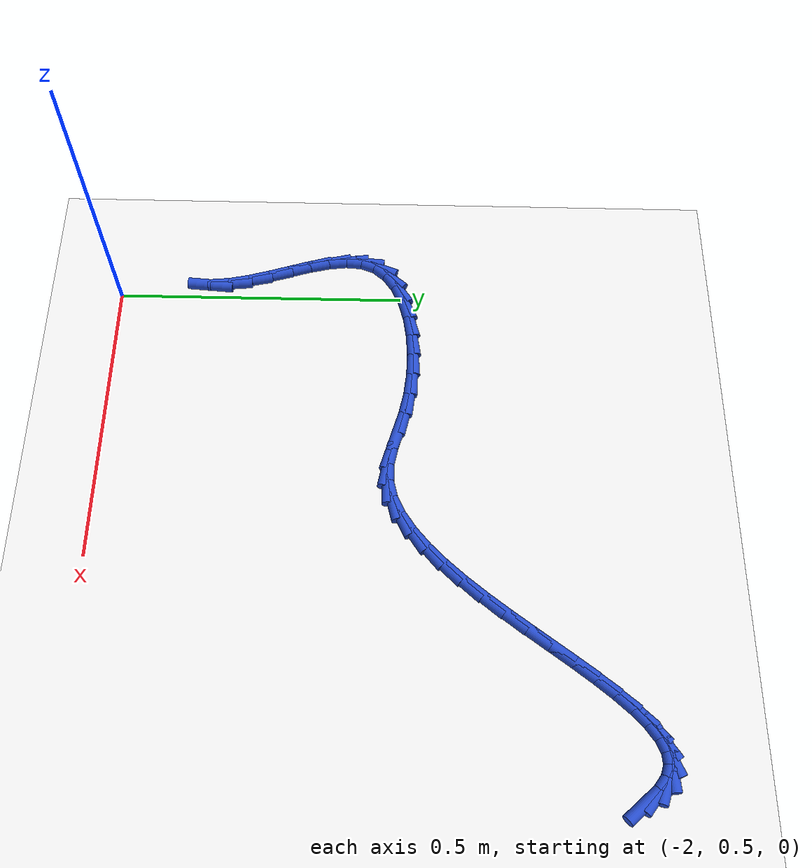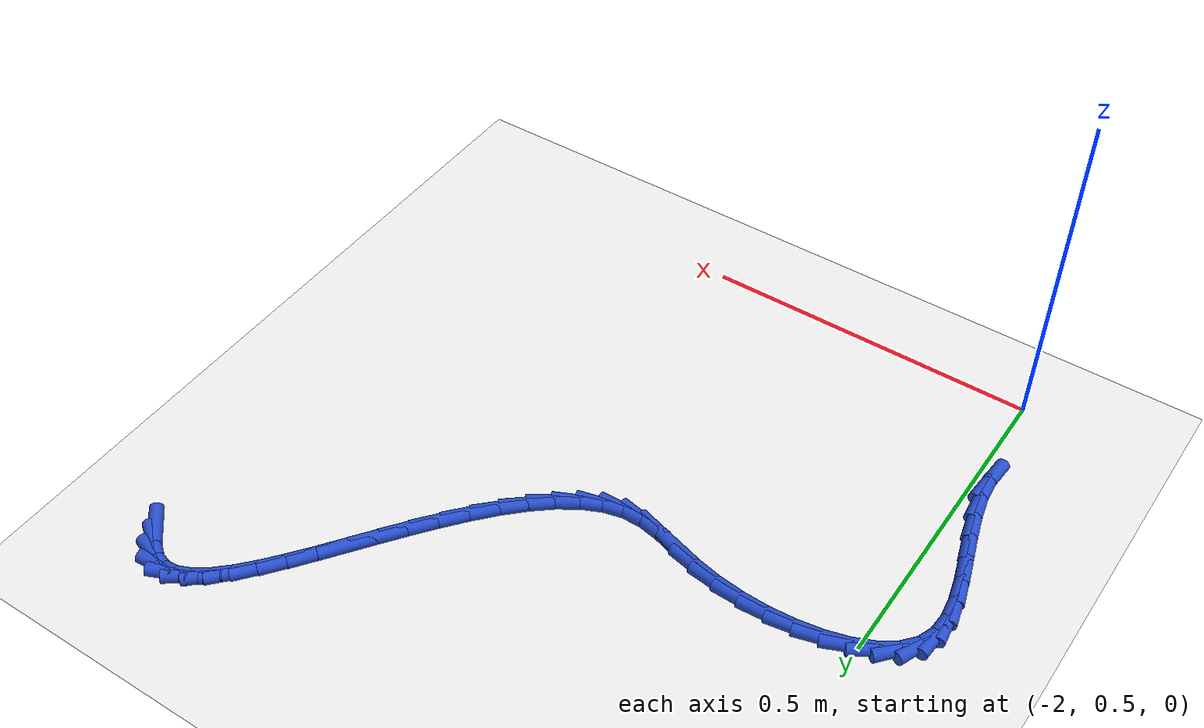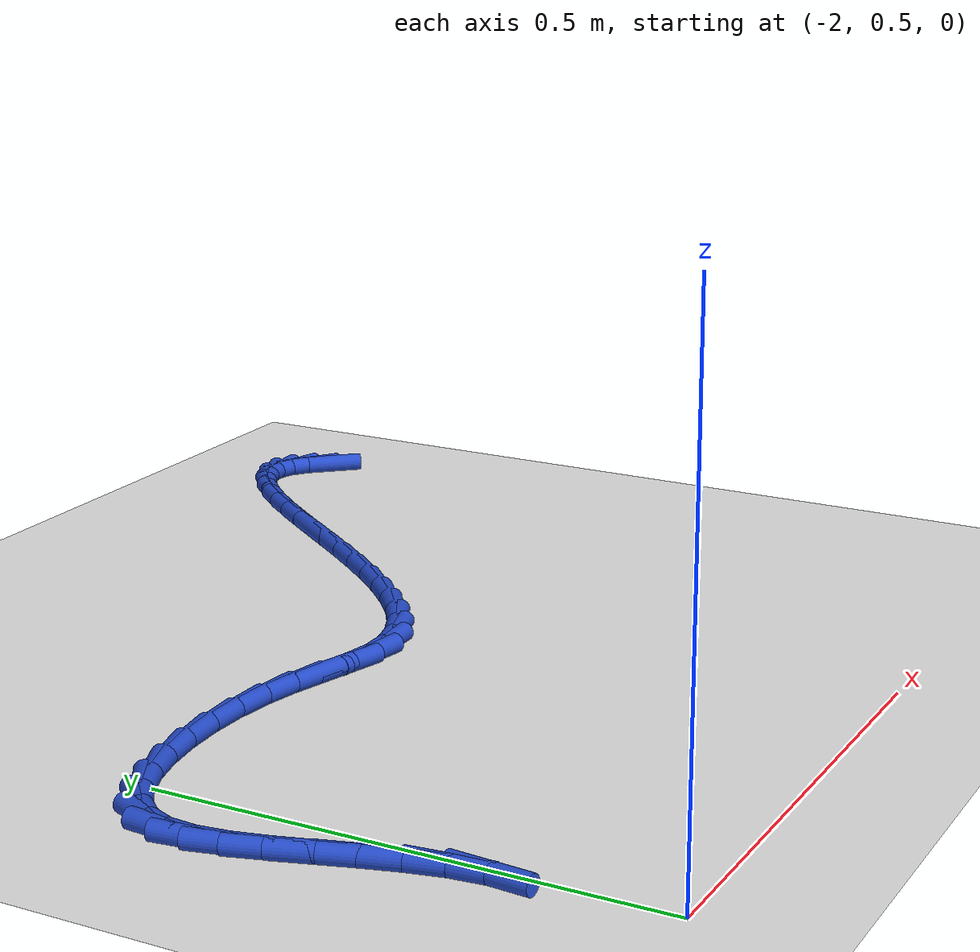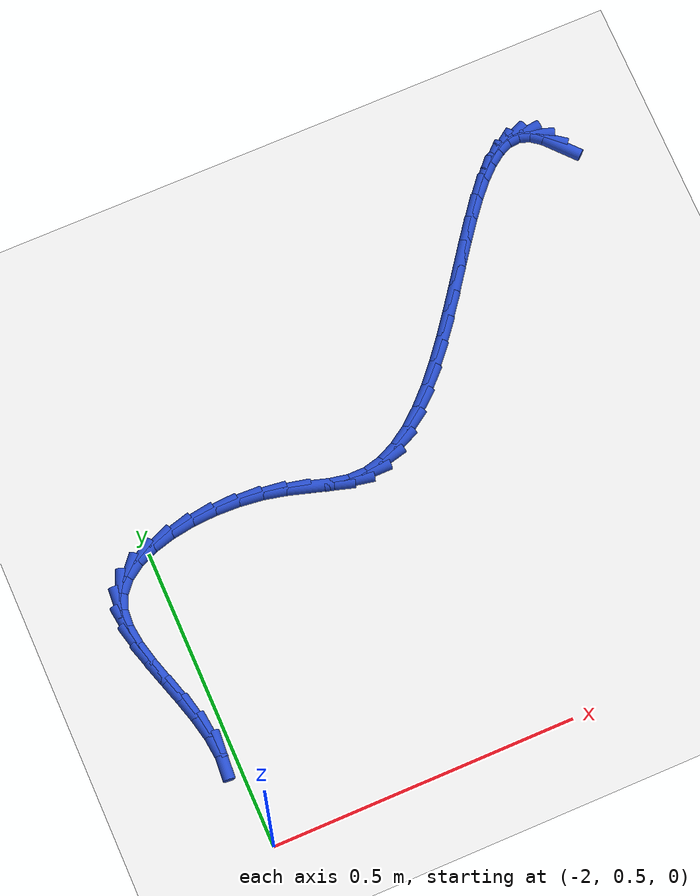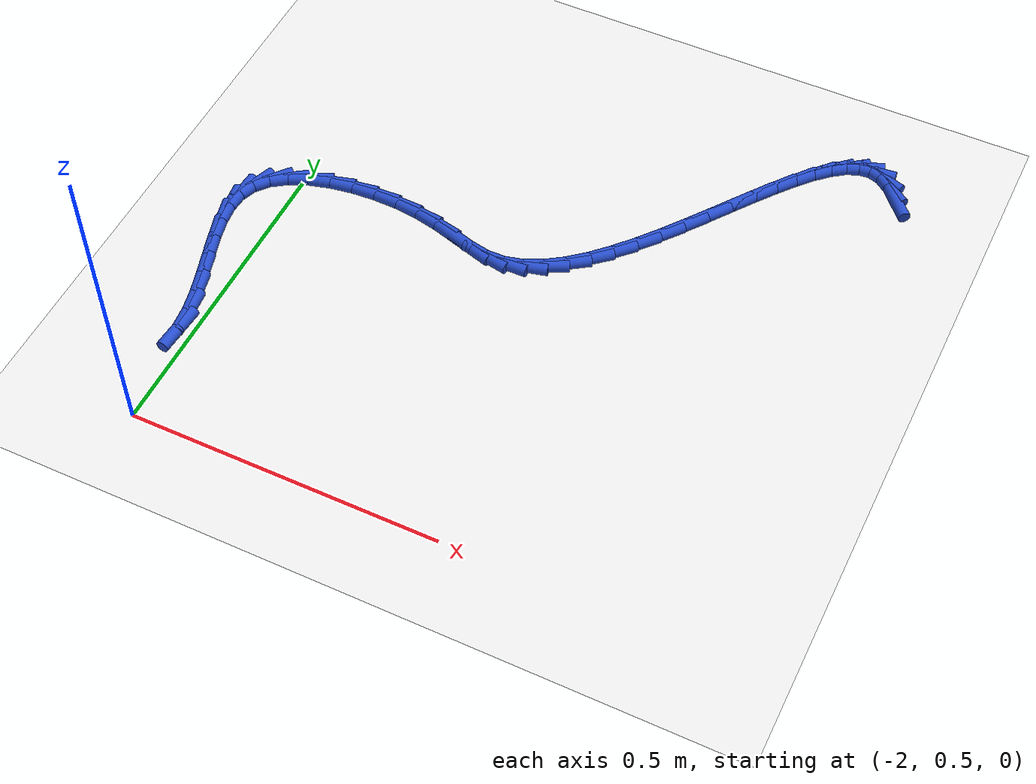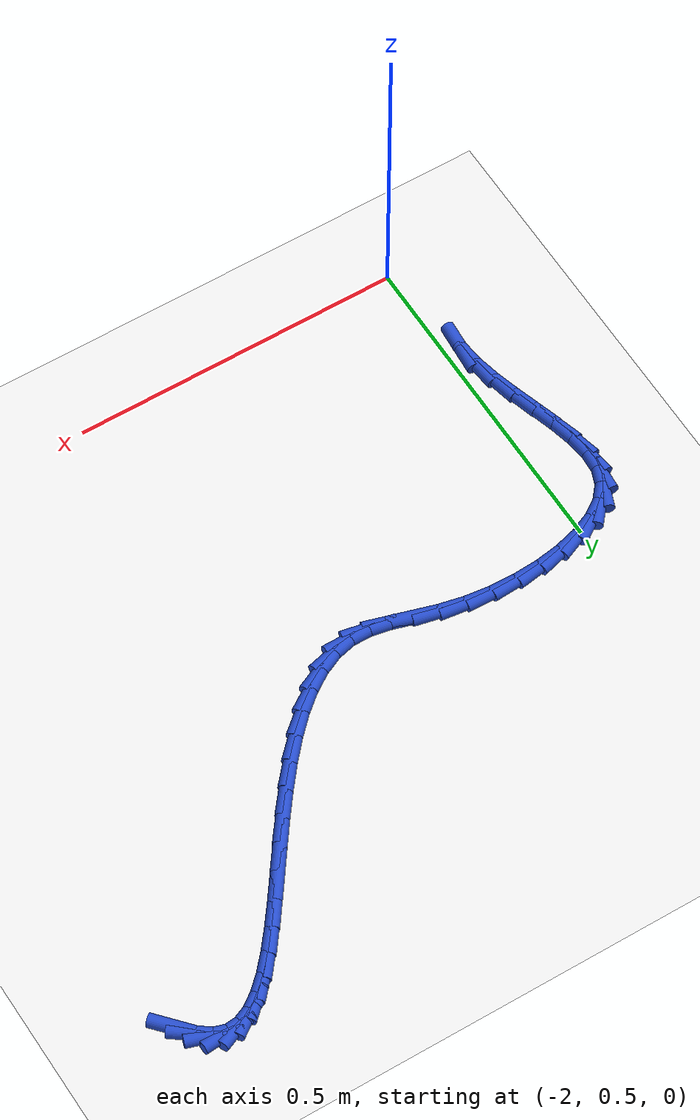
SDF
<sdf version="1.6">
 <world name="default">
  <model name="ground_plane">
   <static>1</static>
   <link name="link">
    <collision name="collision">
     <geometry><plane><normal>0 0 1</normal><size>100 100</size></plane></geometry>
     <surface><friction><ode><mu>100</mu><mu2>50</mu2></ode></friction></surface>
    </collision>
    <visual name="visual">
     <cast_shadows>0</cast_shadows>
     <geometry><plane><normal>0 0 1</normal><size>100 100</size></plane></geometry>
     <material>
      <script><uri>file://media/materials/scripts/gazebo.material</uri><name>Gazebo/WhiteGlow</name></script>
     </material>
    </visual>
   </link>
  </model>
  <model name="line">
   <link name="link_62">
    <pose>-1.1384678839873892 1.3637997432468505 0.01 0 1.57 -0.8475230503554604</pose>
    <collision name="collision">
     <geometry><cylinder><radius>0.01</radius><length>0.08</length></cylinder></geometry>
    </collision>
    <visual name="visual">
     <material>
      <script><name>Gazebo/Blue</name><uri>file://media/materials/scripts/gazebo.material</uri></script>
     </material>
     <geometry><cylinder><radius>0.01</radius><length>0.08</length></cylinder></geometry>
    </visual>
   </link>
   <link name="link_63">
    <pose>-1.1557322173469164 1.3833543994295272 0.01 0 1.57 -0.6411389970311895</pose>
    <collision name="collision">
     <geometry><cylinder><radius>0.01</radius><length>0.08</length></cylinder></geometry>
    </collision>
    <visual name="visual">
     <material>
      <script><name>Gazebo/Blue</name><uri>file://media/materials/scripts/gazebo.material</uri></script>
     </material>
     <geometry><cylinder><radius>0.01</radius><length>0.08</length></cylinder></geometry>
    </visual>
   </link>
   <link name="link_64">
    <pose>-1.173474938620425 1.396596071240918 0.01 0 1.57 -0.3102830415992613</pose>
    <collision name="collision">
     <geometry><cylinder><radius>0.01</radius><length>0.08</length></cylinder></geometry>
    </collision>
    <visual name="visual">
     <material>
      <script><name>Gazebo/Blue</name><uri>file://media/materials/scripts/gazebo.material</uri></script>
     </material>
     <geometry><cylinder><radius>0.01</radius><length>0.08</length></cylinder></geometry>
    </visual>
   </link>
   <link name="link_65">
    <pose>-1.1918803715735002 1.4024975822284373 0.01 0 1.57 0.0923245389611452</pose>
    <collision name="collision">
     <geometry><cylinder><radius>0.01</radius><length>0.08</length></cylinder></geometry>
    </collision>
    <visual name="visual">
     <material>
      <script><name>Gazebo/Blue</name><uri>file://media/materials/scripts/gazebo.material</uri></script>
     </material>
     <geometry><cylinder><radius>0.01</radius><length>0.08</length></cylinder></geometry>
    </visual>
   </link>
   <link name="link_66">
    <pose>-1.2110568640180306 1.4007220738306414 0.01 0 1.57 0.41217816165233906</pose>
    <collision name="collision">
     <geometry><cylinder><radius>0.01</radius><length>0.08</length></cylinder></geometry>
    </collision>
    <visual name="visual">
     <material>
      <script><name>Gazebo/Blue</name><uri>file://media/materials/scripts/gazebo.material</uri></script>
     </material>
     <geometry><cylinder><radius>0.01</radius><length>0.08</length></cylinder></geometry>
    </visual>
   </link>
   <link name="link_67">
    <pose>-1.2309947725913668 1.3920047558816475 0.01 0 1.57 0.6221801606541436</pose>
    <collision name="collision">
     <geometry><cylinder><radius>0.01</radius><length>0.08</length></cylinder></geometry>
    </collision>
    <visual name="visual">
     <material>
      <script><name>Gazebo/Blue</name><uri>file://media/materials/scripts/gazebo.material</uri></script>
     </material>
     <geometry><cylinder><radius>0.01</radius><length>0.08</length></cylinder></geometry>
    </visual>
   </link>
   <link name="link_68">
    <pose>-1.2516742774052378 1.3771733021776984 0.01 0 1.57 0.7544978303005261</pose>
    <collision name="collision">
     <geometry><cylinder><radius>0.01</radius><length>0.08</length></cylinder></geometry>
    </collision>
    <visual name="visual">
     <material>
      <script><name>Gazebo/Blue</name><uri>file://media/materials/scripts/gazebo.material</uri></script>
     </material>
     <geometry><cylinder><radius>0.01</radius><length>0.08</length></cylinder></geometry>
    </visual>
   </link>
   <link name="link_69">
    <pose>-1.2730755585713744 1.3570553865150368 0.01 0 1.57 0.8383364295871951</pose>
    <collision name="collision">
     <geometry><cylinder><radius>0.01</radius><length>0.08</length></cylinder></geometry>
    </collision>
    <visual name="visual">
     <material>
      <script><name>Gazebo/Blue</name><uri>file://media/materials/scripts/gazebo.material</uri></script>
     </material>
     <geometry><cylinder><radius>0.01</radius><length>0.08</length></cylinder></geometry>
    </visual>
   </link>
   <link name="link_70">
    <pose>-1.2951787962015062 1.3324786826899055 0.01 0 1.57 0.89133668632555</pose>
    <collision name="collision">
     <geometry><cylinder><radius>0.01</radius><length>0.08</length></cylinder></geometry>
    </collision>
    <visual name="visual">
     <material>
      <script><name>Gazebo/Blue</name><uri>file://media/materials/scripts/gazebo.material</uri></script>
     </material>
     <geometry><cylinder><radius>0.01</radius><length>0.08</length></cylinder></geometry>
    </visual>
   </link>
   <link name="link_71">
    <pose>-1.3179641704073628 1.3042708644985472 0.01 0 1.57 0.9234010319241628</pose>
    <collision name="collision">
     <geometry><cylinder><radius>0.01</radius><length>0.08</length></cylinder></geometry>
    </collision>
    <visual name="visual">
     <material>
      <script><name>Gazebo/Blue</name><uri>file://media/materials/scripts/gazebo.material</uri></script>
     </material>
     <geometry><cylinder><radius>0.01</radius><length>0.08</length></cylinder></geometry>
    </visual>
   </link>
   <link name="link_72">
    <pose>-1.3414118613006747 1.273259605737205 0.01 0 1.57 0.9400275767968583</pose>
    <collision name="collision">
     <geometry><cylinder><radius>0.01</radius><length>0.08</length></cylinder></geometry>
    </collision>
    <visual name="visual">
     <material>
      <script><name>Gazebo/Blue</name><uri>file://media/materials/scripts/gazebo.material</uri></script>
     </material>
     <geometry><cylinder><radius>0.01</radius><length>0.08</length></cylinder></geometry>
    </visual>
   </link>
   <link name="link_73">
    <pose>-1.3655020489931713 1.2402725802021213 0.01 0 1.57 0.9441623900662726</pose>
    <collision name="collision">
     <geometry><cylinder><radius>0.01</radius><length>0.08</length></cylinder></geometry>
    </collision>
    <visual name="visual">
     <material>
      <script><name>Gazebo/Blue</name><uri>file://media/materials/scripts/gazebo.material</uri></script>
     </material>
     <geometry><cylinder><radius>0.01</radius><length>0.08</length></cylinder></geometry>
    </visual>
   </link>
   <link name="link_74">
    <pose>-1.3902149135965831 1.2061374616895393 0.01 0 1.57 0.9371360067103894</pose>
    <collision name="collision">
     <geometry><cylinder><radius>0.01</radius><length>0.08</length></cylinder></geometry>
    </collision>
    <visual name="visual">
     <material>
      <script><name>Gazebo/Blue</name><uri>file://media/materials/scripts/gazebo.material</uri></script>
     </material>
     <geometry><cylinder><radius>0.01</radius><length>0.08</length></cylinder></geometry>
    </visual>
   </link>
   <link name="link_75">
    <pose>-1.4155306352226402 1.1716819239957013 0.01 0 1.57 0.9190974033657054</pose>
    <collision name="collision">
     <geometry><cylinder><radius>0.01</radius><length>0.08</length></cylinder></geometry>
    </collision>
    <visual name="visual">
     <material>
      <script><name>Gazebo/Blue</name><uri>file://media/materials/scripts/gazebo.material</uri></script>
     </material>
     <geometry><cylinder><radius>0.01</radius><length>0.08</length></cylinder></geometry>
    </visual>
   </link>
   <link name="link_76">
    <pose>-1.4414293939830713 1.1377336409168506 0.01 0 1.57 0.8891519611917929</pose>
    <collision name="collision">
     <geometry><cylinder><radius>0.01</radius><length>0.08</length></cylinder></geometry>
    </collision>
    <visual name="visual">
     <material>
      <script><name>Gazebo/Blue</name><uri>file://media/materials/scripts/gazebo.material</uri></script>
     </material>
     <geometry><cylinder><radius>0.01</radius><length>0.08</length></cylinder></geometry>
    </visual>
   </link>
   <link name="link_77">
    <pose>-1.4678913699896077 1.1051202862492298 0.01 0 1.57 0.8452918343795051</pose>
    <collision name="collision">
     <geometry><cylinder><radius>0.01</radius><length>0.08</length></cylinder></geometry>
    </collision>
    <visual name="visual">
     <material>
      <script><name>Gazebo/Blue</name><uri>file://media/materials/scripts/gazebo.material</uri></script>
     </material>
     <geometry><cylinder><radius>0.01</radius><length>0.08</length></cylinder></geometry>
    </visual>
   </link>
   <link name="link_78">
    <pose>-1.4948967433539795 1.0746695337890815 0.01 0 1.57 0.7841529359876579</pose>
    <collision name="collision">
     <geometry><cylinder><radius>0.01</radius><length>0.08</length></cylinder></geometry>
    </collision>
    <visual name="visual">
     <material>
      <script><name>Gazebo/Blue</name><uri>file://media/materials/scripts/gazebo.material</uri></script>
     </material>
     <geometry><cylinder><radius>0.01</radius><length>0.08</length></cylinder></geometry>
    </visual>
   </link>
   <link name="link_79">
    <pose>-1.5224256941879146 1.047209057332649 0.01 0 1.57 0.700644511263336</pose>
    <collision name="collision">
     <geometry><cylinder><radius>0.01</radius><length>0.08</length></cylinder></geometry>
    </collision>
    <visual name="visual">
     <material>
      <script><name>Gazebo/Blue</name><uri>file://media/materials/scripts/gazebo.material</uri></script>
     </material>
     <geometry><cylinder><radius>0.01</radius><length>0.08</length></cylinder></geometry>
    </visual>
   </link>
   <link name="link_80">
    <pose>-1.5504584026031445 1.023566530676174 0.01 0 1.57 0.5876579237404596</pose>
    <collision name="collision">
     <geometry><cylinder><radius>0.01</radius><length>0.08</length></cylinder></geometry>
    </collision>
    <visual name="visual">
     <material>
      <script><name>Gazebo/Blue</name><uri>file://media/materials/scripts/gazebo.material</uri></script>
     </material>
     <geometry><cylinder><radius>0.01</radius><length>0.08</length></cylinder></geometry>
    </visual>
   </link>
   <link name="link_81">
    <pose>-1.5789750487113996 1.004569627615901 0.01 0 1.57 0.43660588503196895</pose>
    <collision name="collision">
     <geometry><cylinder><radius>0.01</radius><length>0.08</length></cylinder></geometry>
    </collision>
    <visual name="visual">
     <material>
      <script><name>Gazebo/Blue</name><uri>file://media/materials/scripts/gazebo.material</uri></script>
     </material>
     <geometry><cylinder><radius>0.01</radius><length>0.08</length></cylinder></geometry>
    </visual>
   </link>
   <link name="link_82">
    <pose>-1.6079558126244091 0.9910460219480719 0.01 0 1.57 0.24069985812992112</pose>
    <collision name="collision">
     <geometry><cylinder><radius>0.01</radius><length>0.08</length></cylinder></geometry>
    </collision>
    <visual name="visual">
     <material>
      <script><name>Gazebo/Blue</name><uri>file://media/materials/scripts/gazebo.material</uri></script>
     </material>
     <geometry><cylinder><radius>0.01</radius><length>0.08</length></cylinder></geometry>
    </visual>
   </link>
   <link name="link_83">
    <pose>-1.6373808744539033 0.9838233874689288 0.01 0 1.57 0.005025368874401491</pose>
    <collision name="collision">
     <geometry><cylinder><radius>0.01</radius><length>0.08</length></cylinder></geometry>
    </collision>
    <visual name="visual">
     <material>
      <script><name>Gazebo/Blue</name><uri>file://media/materials/scripts/gazebo.material</uri></script>
     </material>
     <geometry><cylinder><radius>0.01</radius><length>0.08</length></cylinder></geometry>
    </visual>
   </link>
   <link name="link_84">
    <pose>-1.6672410623998999 0.9836733277466198 0.01 0 1.57 -0.1952438727034298</pose>
    <collision name="collision">
     <geometry><cylinder><radius>0.01</radius><length>0.08</length></cylinder></geometry>
    </collision>
    <visual name="visual">
     <material>
      <script><name>Gazebo/Blue</name><uri>file://media/materials/scripts/gazebo.material</uri></script>
     </material>
     <geometry><cylinder><radius>0.01</radius><length>0.08</length></cylinder></geometry>
    </visual>
   </link>
   <link name="link_85">
    <pose>-1.697839207638807 0.9897245150005953 0.01 0 1.57 -0.2890452453419495</pose>
    <collision name="collision">
     <geometry><cylinder><radius>0.01</radius><length>0.08</length></cylinder></geometry>
    </collision>
    <visual name="visual">
     <material>
      <script><name>Gazebo/Blue</name><uri>file://media/materials/scripts/gazebo.material</uri></script>
     </material>
     <geometry><cylinder><radius>0.01</radius><length>0.08</length></cylinder></geometry>
    </visual>
   </link>
   <link name="link_86">
    <pose>-1.7298327137877687 0.9992385297160775 0.01 0 1.57 -0.2892374509164054</pose>
    <collision name="collision">
     <geometry><cylinder><radius>0.01</radius><length>0.08</length></cylinder></geometry>
    </collision>
    <visual name="visual">
     <material>
      <script><name>Gazebo/Blue</name><uri>file://media/materials/scripts/gazebo.material</uri></script>
     </material>
     <geometry><cylinder><radius>0.01</radius><length>0.08</length></cylinder></geometry>
    </visual>
   </link>
   <link name="link_87">
    <pose>-1.7638981901282171 1.00937582004841 0.01 0 1.57 -0.21516939325138518</pose>
    <collision name="collision">
     <geometry><cylinder><radius>0.01</radius><length>0.08</length></cylinder></geometry>
    </collision>
    <visual name="visual">
     <material>
      <script><name>Gazebo/Blue</name><uri>file://media/materials/scripts/gazebo.material</uri></script>
     </material>
     <geometry><cylinder><radius>0.01</radius><length>0.08</length></cylinder></geometry>
    </visual>
   </link>
   <link name="link_88">
    <pose>-1.8006348076856324 1.0174047066709258 0.01 0 1.57 -0.12024637089306882</pose>
    <collision name="collision">
     <geometry><cylinder><radius>0.01</radius><length>0.08</length></cylinder></geometry>
    </collision>
    <visual name="visual">
     <material>
      <script><name>Gazebo/Blue</name><uri>file://media/materials/scripts/gazebo.material</uri></script>
     </material>
     <geometry><cylinder><radius>0.01</radius><length>0.08</length></cylinder></geometry>
    </visual>
   </link>
   <link name="link_89">
    <pose>-1.8395549628902819 1.0221074016873413 0.01 0 1.57 -0.0320098200441066</pose>
    <collision name="collision">
     <geometry><cylinder><radius>0.01</radius><length>0.08</length></cylinder></geometry>
    </collision>
    <visual name="visual">
     <material>
      <script><name>Gazebo/Blue</name><uri>file://media/materials/scripts/gazebo.material</uri></script>
     </material>
     <geometry><cylinder><radius>0.01</radius><length>0.08</length></cylinder></geometry>
    </visual>
   </link>
   <link name="link_90">
    <pose>-1.8793697783774068 1.023382302229097 0.01 0 1.57 0.05649767070202297</pose>
    <collision name="collision">
     <geometry><cylinder><radius>0.01</radius><length>0.08</length></cylinder></geometry>
    </collision>
    <visual name="visual">
     <material>
      <script><name>Gazebo/Blue</name><uri>file://media/materials/scripts/gazebo.material</uri></script>
     </material>
     <geometry><cylinder><radius>0.01</radius><length>0.08</length></cylinder></geometry>
    </visual>
   </link>
   <link name="link_91">
    <pose>-1.918771706437506 1.0211538134655758 0.01 0 1.57 0.15291686319745953</pose>
    <collision name="collision">
     <geometry><cylinder><radius>0.01</radius><length>0.08</length></cylinder></geometry>
    </collision>
    <visual name="visual">
     <material>
      <script><name>Gazebo/Blue</name><uri>file://media/materials/scripts/gazebo.material</uri></script>
     </material>
     <geometry><cylinder><radius>0.01</radius><length>0.08</length></cylinder></geometry>
    </visual>
   </link>
   <link name="link_92">
    <pose>-1.9564531993610768 1.015346340566161 0.01 0 1.57 0.2665500174315261</pose>
    <collision name="collision">
     <geometry><cylinder><radius>0.01</radius><length>0.08</length></cylinder></geometry>
    </collision>
    <visual name="visual">
     <material>
      <script><name>Gazebo/Blue</name><uri>file://media/materials/scripts/gazebo.material</uri></script>
     </material>
     <geometry><cylinder><radius>0.01</radius><length>0.08</length></cylinder></geometry>
    </visual>
   </link>
   <link name="link_93">
    <pose>-1.9911067094386188 1.005884288700236 0.01 0 1.57 0.4104184459513974</pose>
    <collision name="collision">
     <geometry><cylinder><radius>0.01</radius><length>0.08</length></cylinder></geometry>
    </collision>
    <visual name="visual">
     <material>
      <script><name>Gazebo/Blue</name><uri>file://media/materials/scripts/gazebo.material</uri></script>
     </material>
     <geometry><cylinder><radius>0.01</radius><length>0.08</length></cylinder></geometry>
    </visual>
   </link>
   <link name="link_94">
    <pose>-2.021424688960629 0.9926920630371834 0.01 0 1.57 0.6032224041871304</pose>
    <collision name="collision">
     <geometry><cylinder><radius>0.01</radius><length>0.08</length></cylinder></geometry>
    </collision>
    <visual name="visual">
     <material>
      <script><name>Gazebo/Blue</name><uri>file://media/materials/scripts/gazebo.material</uri></script>
     </material>
     <geometry><cylinder><radius>0.01</radius><length>0.08</length></cylinder></geometry>
    </visual>
   </link>
   <link name="link_95">
    <pose>-2.0460995902176053 0.9756940687463868 0.01 0 1.57 0.86694710346117</pose>
    <collision name="collision">
     <geometry><cylinder><radius>0.01</radius><length>0.08</length></cylinder></geometry>
    </collision>
    <visual name="visual">
     <material>
      <script><name>Gazebo/Blue</name><uri>file://media/materials/scripts/gazebo.material</uri></script>
     </material>
     <geometry><cylinder><radius>0.01</radius><length>0.08</length></cylinder></geometry>
    </visual>
   </link>
   <link name="link_96">
    <pose>-2.0638238655000474 0.9548147109972296 0.01 0 1.57 1.2010414418082789</pose>
    <collision name="collision">
     <geometry><cylinder><radius>0.01</radius><length>0.08</length></cylinder></geometry>
    </collision>
    <visual name="visual">
     <material>
      <script><name>Gazebo/Blue</name><uri>file://media/materials/scripts/gazebo.material</uri></script>
     </material>
     <geometry><cylinder><radius>0.01</radius><length>0.08</length></cylinder></geometry>
    </visual>
   </link>
   <link name="link_97">
    <pose>-2.0734360222471473 0.9300143420033963 0.01 0 1.57 1.4983481178579083</pose>
    <collision name="collision">
     <geometry><cylinder><radius>0.01</radius><length>0.08</length></cylinder></geometry>
    </collision>
    <visual name="visual">
     <material>
      <script><name>Gazebo/Blue</name><uri>file://media/materials/scripts/gazebo.material</uri></script>
     </material>
     <geometry><cylinder><radius>0.01</radius><length>0.08</length></cylinder></geometry>
    </visual>
   </link>
   <link name="link_98">
    <pose>-2.0754926713678046 0.9016761730293564 0.01 0 1.57 -1.448904621317778</pose>
    <collision name="collision">
     <geometry><cylinder><radius>0.01</radius><length>0.08</length></cylinder></geometry>
    </collision>
    <visual name="visual">
     <material>
      <script><name>Gazebo/Blue</name><uri>file://media/materials/scripts/gazebo.material</uri></script>
     </material>
     <geometry><cylinder><radius>0.01</radius><length>0.08</length></cylinder></geometry>
    </visual>
   </link>
   <link name="link_99">
    <pose>-2.07166855133684 0.8704586085217841 0.01 0 1.57 -1.335620467196734</pose>
    <collision name="collision">
     <geometry><cylinder><radius>0.01</radius><length>0.08</length></cylinder></geometry>
    </collision>
    <visual name="visual">
     <material>
      <script><name>Gazebo/Blue</name><uri>file://media/materials/scripts/gazebo.material</uri></script>
     </material>
     <geometry><cylinder><radius>0.01</radius><length>0.08</length></cylinder></geometry>
    </visual>
   </link>
   <link name="link_100">
    <pose>-2.063657475564812 0.8370247476441508 0.01 0 1.57 -1.2791271297675877</pose>
    <collision name="collision">
     <geometry><cylinder><radius>0.01</radius><length>0.08</length></cylinder></geometry>
    </collision>
    <visual name="visual">
     <material>
      <script><name>Gazebo/Blue</name><uri>file://media/materials/scripts/gazebo.material</uri></script>
     </material>
     <geometry><cylinder><radius>0.01</radius><length>0.08</length></cylinder></geometry>
    </visual>
   </link>
   <link name="link_101">
    <pose>-2.0531532574622773 0.8020376895599277 0.01 0 1.57 -1.265578631768484</pose>
    <collision name="collision">
     <geometry><cylinder><radius>0.01</radius><length>0.08</length></cylinder></geometry>
    </collision>
    <visual name="visual">
     <material>
      <script><name>Gazebo/Blue</name><uri>file://media/materials/scripts/gazebo.material</uri></script>
     </material>
     <geometry><cylinder><radius>0.01</radius><length>0.08</length></cylinder></geometry>
    </visual>
   </link>
   <link name="link_102">
    <pose>-2.0418497104397955 0.766160533432586 0.01 0 1.57 -1.2901017376556843</pose>
    <collision name="collision">
     <geometry><cylinder><radius>0.01</radius><length>0.08</length></cylinder></geometry>
    </collision>
    <visual name="visual">
     <material>
      <script><name>Gazebo/Blue</name><uri>file://media/materials/scripts/gazebo.material</uri></script>
     </material>
     <geometry><cylinder><radius>0.01</radius><length>0.08</length></cylinder></geometry>
    </visual>
   </link>
   <link name="link_103">
    <pose>-2.0314406479079223 0.7300563784255977 0.01 0 1.57 -1.3549469677760833</pose>
    <collision name="collision">
     <geometry><cylinder><radius>0.01</radius><length>0.08</length></cylinder></geometry>
    </collision>
    <visual name="visual">
     <material>
      <script><name>Gazebo/Blue</name><uri>file://media/materials/scripts/gazebo.material</uri></script>
     </material>
     <geometry><cylinder><radius>0.01</radius><length>0.08</length></cylinder></geometry>
    </visual>
   </link>
   <link name="link_104">
    <pose>-2.0236198832772176 0.6943883237024338 0.01 0 1.57 -1.4687862862174097</pose>
    <collision name="collision">
     <geometry><cylinder><radius>0.01</radius><length>0.08</length></cylinder></geometry>
    </collision>
    <visual name="visual">
     <material>
      <script><name>Gazebo/Blue</name><uri>file://media/materials/scripts/gazebo.material</uri></script>
     </material>
     <geometry><cylinder><radius>0.01</radius><length>0.08</length></cylinder></geometry>
    </visual>
   </link>
   <link name="link_105">
    <pose>-2.020081229958238 0.6598194684265657 0.01 0 1.57 1.4966403529501195</pose>
    <collision name="collision">
     <geometry><cylinder><radius>0.01</radius><length>0.08</length></cylinder></geometry>
    </collision>
    <visual name="visual">
     <material>
      <script><name>Gazebo/Blue</name><uri>file://media/materials/scripts/gazebo.material</uri></script>
     </material>
     <geometry><cylinder><radius>0.01</radius><length>0.08</length></cylinder></geometry>
    </visual>
   </link>
  </model>
 </world>
</sdf>
